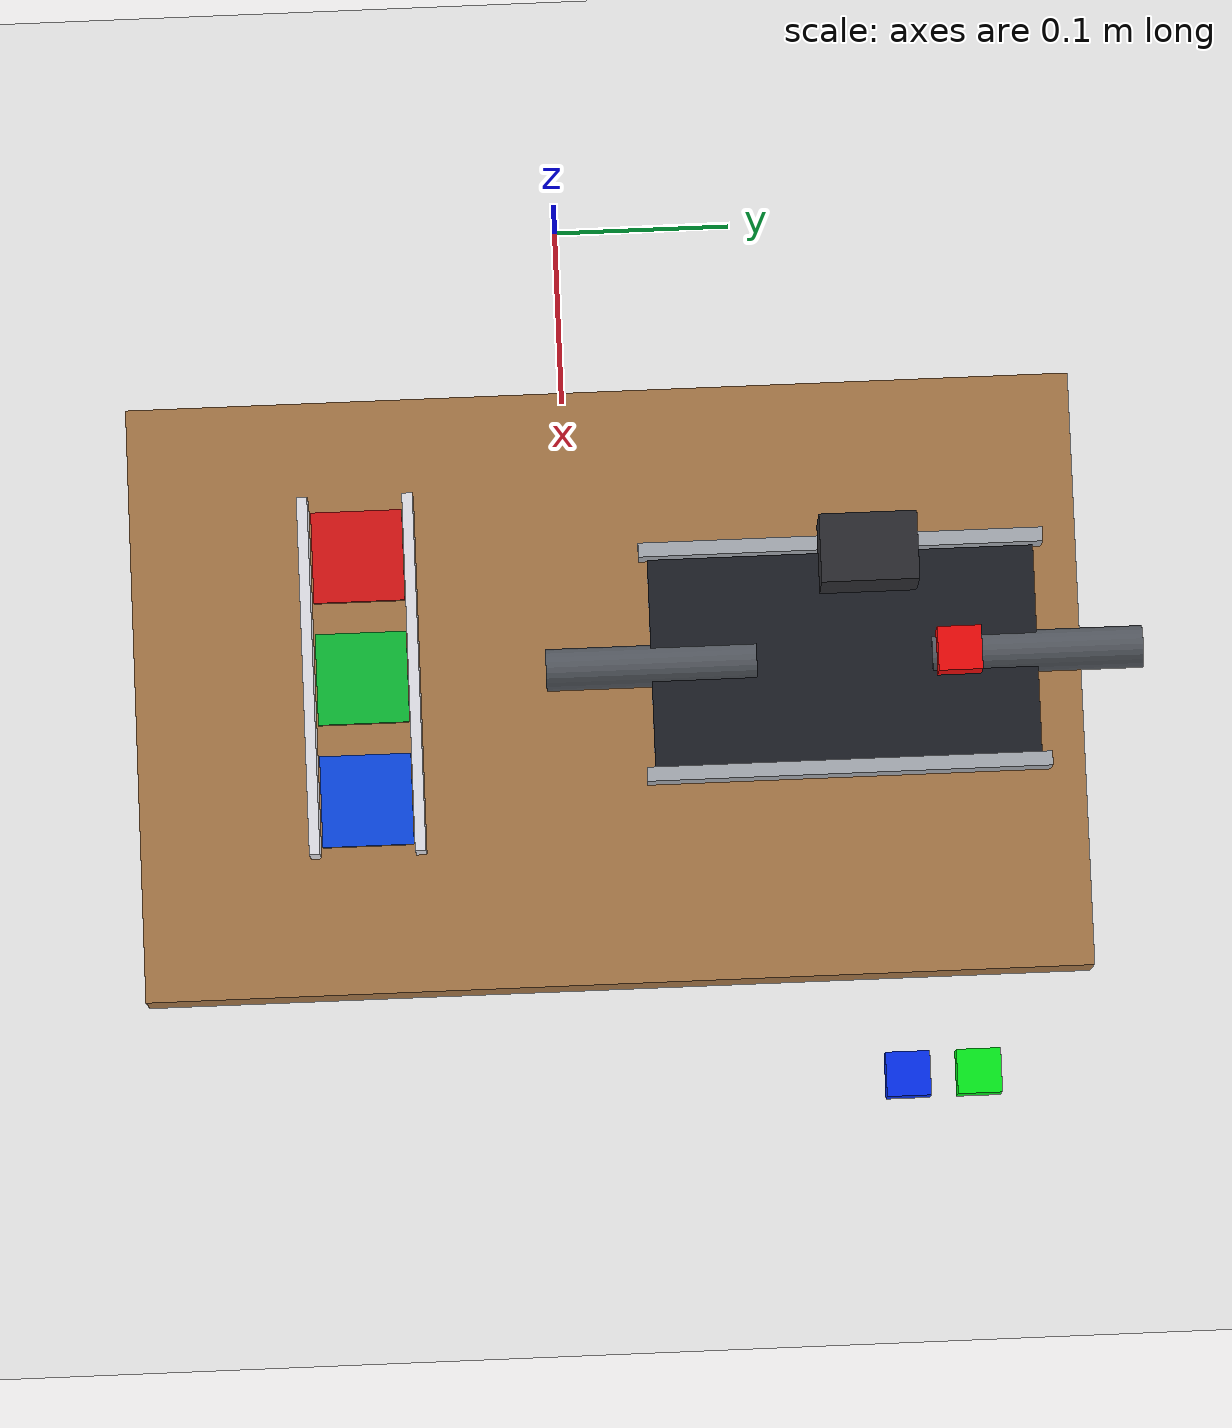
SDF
<?xml version="1.0"?>
<sdf version="1.6">
  <world name="conveyor_sorting">
    <gravity>0 0 -9.81</gravity>
    <physics name="ode" type="ode"><max_step_size>0.001</max_step_size><real_time_update_rate>1000</real_time_update_rate></physics>
    <scene><ambient>0.94 0.94 0.94 1</ambient><background>0.98 0.98 0.98 1</background><shadows>true</shadows></scene>
    <light name="sun" type="directional"><pose>0 0 5 0 0 0</pose><diffuse>0.9 0.9 0.9 1</diffuse><direction>-0.3 -0.4 -1</direction></light>

    <model name="ground"><static>true</static><link name="ground_link">
      <collision name="collision"><geometry><plane><normal>0 0 1</normal><size>8 8</size></plane></geometry></collision>
      <visual name="visual"><geometry><plane><normal>0 0 1</normal><size>8 8</size></plane></geometry><material><ambient>0.93 0.93 0.93 1</ambient><diffuse>0.98 0.98 0.98 1</diffuse></material></visual>
    </link></model>

    <model name="work_surface"><static>true</static><pose>0.27 0.02 0.0225 0 0 0</pose><link name="body">
      <collision name="collision"><geometry><box><size>0.34 0.54 0.045</size></box></geometry></collision>
      <visual name="visual"><geometry><box><size>0.34 0.54 0.045</size></box></geometry><material><script><uri>file://media/materials/scripts/gazebo.material</uri><name>Gazebo/Wood</name></script></material></visual>
    </link></model>

    <model name="conveyor"><static>true</static><pose>0.26 0.155 0.052 0 0 0</pose><link name="body">
      <collision name="belt"><geometry><box><size>0.12 0.22 0.014</size></box></geometry></collision>
      <visual name="belt"><geometry><box><size>0.12 0.22 0.014</size></box></geometry><material><ambient>0.08 0.09 0.11 1</ambient><diffuse>0.12 0.13 0.16 1</diffuse></material></visual>
      <visual name="left_rail"><pose>-0.064 0 0.012 0 0 0</pose><geometry><box><size>0.008 0.23 0.024</size></box></geometry><material><ambient>0.55 0.57 0.60 1</ambient><diffuse>0.70 0.72 0.75 1</diffuse></material></visual>
      <visual name="right_rail"><pose>0.064 0 0.012 0 0 0</pose><geometry><box><size>0.008 0.23 0.024</size></box></geometry><material><ambient>0.55 0.57 0.60 1</ambient><diffuse>0.70 0.72 0.75 1</diffuse></material></visual>
      <visual name="roller_front"><pose>0 -0.110 0 1.5708 0 0</pose><geometry><cylinder><radius>0.012</radius><length>0.12</length></cylinder></geometry><material><ambient>0.25 0.27 0.30 1</ambient><diffuse>0.35 0.37 0.40 1</diffuse></material></visual>
      <visual name="roller_rear"><pose>0 0.110 0 1.5708 0 0</pose><geometry><cylinder><radius>0.012</radius><length>0.12</length></cylinder></geometry><material><ambient>0.25 0.27 0.30 1</ambient><diffuse>0.35 0.37 0.40 1</diffuse></material></visual>
    </link></model>

    <!-- Three open sorting bins. -->
    <model name="sorting_bins"><static>true</static><pose>0 -0.12 0.047 0 0 0</pose><link name="body">
      <visual name="red_floor"><pose>0.19 0 0.002 0 0 0</pose><geometry><box><size>0.052 0.052 0.004</size></box></geometry><material><ambient>0.60 0.03 0.03 1</ambient><diffuse>0.90 0.08 0.08 1</diffuse></material></visual>
      <visual name="green_floor"><pose>0.26 0 0.002 0 0 0</pose><geometry><box><size>0.052 0.052 0.004</size></box></geometry><material><ambient>0.02 0.48 0.13 1</ambient><diffuse>0.05 0.78 0.22 1</diffuse></material></visual>
      <visual name="blue_floor"><pose>0.33 0 0.002 0 0 0</pose><geometry><box><size>0.052 0.052 0.004</size></box></geometry><material><ambient>0.02 0.18 0.62 1</ambient><diffuse>0.04 0.30 0.95 1</diffuse></material></visual>
      <collision name="floor"><pose>0.26 0 0.002 0 0 0</pose><geometry><box><size>0.192 0.056 0.004</size></box></geometry></collision>
      <collision name="back"><pose>0.26 0.030 0.015 0 0 0</pose><geometry><box><size>0.192 0.006 0.030</size></box></geometry></collision>
      <collision name="front"><pose>0.26 -0.030 0.015 0 0 0</pose><geometry><box><size>0.192 0.006 0.030</size></box></geometry></collision>
      <collision name="left"><pose>0.161 0 0.015 0 0 0</pose><geometry><box><size>0.006 0.066 0.030</size></box></geometry></collision>
      <collision name="divider1"><pose>0.225 0 0.015 0 0 0</pose><geometry><box><size>0.006 0.066 0.030</size></box></geometry></collision>
      <collision name="divider2"><pose>0.295 0 0.015 0 0 0</pose><geometry><box><size>0.006 0.066 0.030</size></box></geometry></collision>
      <collision name="right"><pose>0.359 0 0.015 0 0 0</pose><geometry><box><size>0.006 0.066 0.030</size></box></geometry></collision>
      <visual name="walls"><pose>0.26 0.030 0.015 0 0 0</pose><geometry><box><size>0.204 0.006 0.030</size></box></geometry><material><ambient>0.85 0.85 0.88 1</ambient><diffuse>0.95 0.95 0.98 1</diffuse></material></visual>
      <visual name="walls2"><pose>0.26 -0.030 0.015 0 0 0</pose><geometry><box><size>0.204 0.006 0.030</size></box></geometry><material><ambient>0.85 0.85 0.88 1</ambient><diffuse>0.95 0.95 0.98 1</diffuse></material></visual>
    </link></model>

    <model name="conveyor_cube_red"><static>false</static><pose>0.26 0.22 0.072 0 0 0</pose><link name="body"><kinematic>true</kinematic><inertial><mass>0.018</mass><inertia><ixx>1.9e-6</ixx><iyy>1.9e-6</iyy><izz>1.9e-6</izz><ixy>0</ixy><ixz>0</ixz><iyz>0</iyz></inertia></inertial><collision name="collision"><geometry><box><size>0.025 0.025 0.025</size></box></geometry></collision><visual name="visual"><geometry><box><size>0.025 0.025 0.025</size></box></geometry><material><ambient>0.85 0.02 0.02 1</ambient><diffuse>1 0.04 0.04 1</diffuse></material></visual></link></model>
    <model name="conveyor_cube_green"><static>false</static><pose>0.50 0.22 0.072 0 0 0</pose><link name="body"><kinematic>true</kinematic><inertial><mass>0.018</mass><inertia><ixx>1.9e-6</ixx><iyy>1.9e-6</iyy><izz>1.9e-6</izz><ixy>0</ixy><ixz>0</ixz><iyz>0</iyz></inertia></inertial><collision name="collision"><geometry><box><size>0.025 0.025 0.025</size></box></geometry></collision><visual name="visual"><geometry><box><size>0.025 0.025 0.025</size></box></geometry><material><ambient>0.01 0.75 0.10 1</ambient><diffuse>0.02 1 0.12 1</diffuse></material></visual></link></model>
    <model name="conveyor_cube_blue"><static>false</static><pose>0.50 0.18 0.072 0 0 0</pose><link name="body"><kinematic>true</kinematic><inertial><mass>0.018</mass><inertia><ixx>1.9e-6</ixx><iyy>1.9e-6</iyy><izz>1.9e-6</izz><ixy>0</ixy><ixz>0</ixz><iyz>0</iyz></inertia></inertial><collision name="collision"><geometry><box><size>0.025 0.025 0.025</size></box></geometry></collision><visual name="visual"><geometry><box><size>0.025 0.025 0.025</size></box></geometry><material><ambient>0.01 0.12 0.90 1</ambient><diffuse>0.02 0.20 1 1</diffuse></material></visual></link></model>

    <model name="overhead_camera"><static>true</static><pose>0.26 0.155 0.55 0 1.5708 0</pose><link name="camera_link">
      <visual name="housing"><geometry><box><size>0.05 0.05 0.035</size></box></geometry><material><ambient>0.12 0.12 0.14 1</ambient><diffuse>0.18 0.18 0.20 1</diffuse></material></visual>
      <sensor name="color_camera" type="camera"><always_on>true</always_on><update_rate>20</update_rate><camera><horizontal_fov>0.52</horizontal_fov><image><width>640</width><height>480</height><format>R8G8B8</format></image><clip><near>0.05</near><far>5</far></clip></camera>
        <plugin name="conveyor_camera" filename="libgazebo_ros_camera.so"><ros><namespace>/conveyor</namespace></ros><camera_name>camera</camera_name><frame_name>overhead_camera</frame_name></plugin>
      </sensor>
    </link></model>

    <plugin name="gazebo_ros_state" filename="libgazebo_ros_state.so"><ros><namespace>/gazebo</namespace></ros><update_rate>30.0</update_rate></plugin>
    <gui><camera name="user_camera"><pose>0.85 -0.85 0.70 0 0.45 2.35</pose></camera></gui>
  </world>
</sdf>
